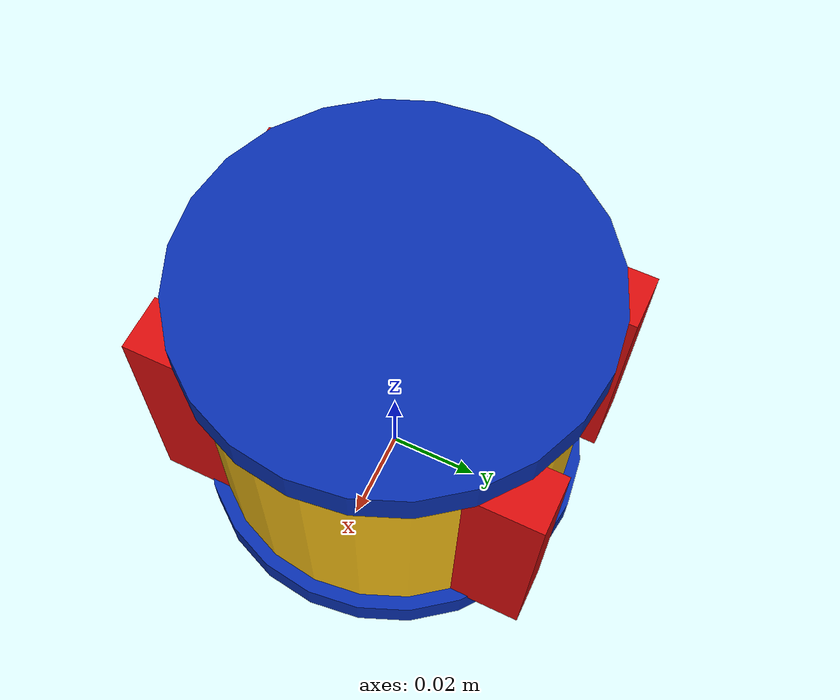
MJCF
<mujoco model="custom_toy_drum">
  <asset>
    <material name="toy_drum_yellow" rgba="0.95 0.74 0.08 1"/>
    <material name="toy_drum_blue" rgba="0.03 0.18 0.68 1"/>
    <material name="toy_drum_red" rgba="0.85 0.05 0.05 1"/>
  </asset>
  <worldbody>
    <body>
      <body name="object">
        <geom name="drum_col" type="cylinder" size="0.042 0.032" pos="0 0 0.032" rgba="0 0 0 0" density="220" group="0" contype="1" conaffinity="1"/>
        <geom name="drum_body" type="cylinder" size="0.040 0.030" pos="0 0 0.032" material="toy_drum_yellow" group="1" contype="0" conaffinity="0"/>
        <geom name="top_rim" type="cylinder" size="0.043 0.004" pos="0 0 0.066" material="toy_drum_blue" group="1" contype="0" conaffinity="0"/>
        <geom name="bottom_rim" type="cylinder" size="0.043 0.004" pos="0 0 0.002" material="toy_drum_blue" group="1" contype="0" conaffinity="0"/>
        <geom name="stripe_1" type="box" size="0.006 0.043 0.027" pos="0.023 0 0.032" material="toy_drum_red" group="1" contype="0" conaffinity="0"/>
        <geom name="stripe_2" type="box" size="0.006 0.043 0.027" pos="-0.023 0 0.032" material="toy_drum_red" group="1" contype="0" conaffinity="0"/>
        <geom name="reg_bbox" type="box" size="0.050 0.050 0.036" pos="0 0 0.036" rgba="0 0 0 0" group="3" contype="0" conaffinity="0"/>
      </body>
      <site name="bottom_site" pos="0 0 0" size="0.005" rgba="0 0 0 0"/>
      <site name="top_site" pos="0 0 0.072" size="0.005" rgba="0 0 0 0"/>
      <site name="horizontal_radius_site" pos="0.055 0 0.036" size="0.005" rgba="0 0 0 0"/>
    </body>
  </worldbody>
</mujoco>
